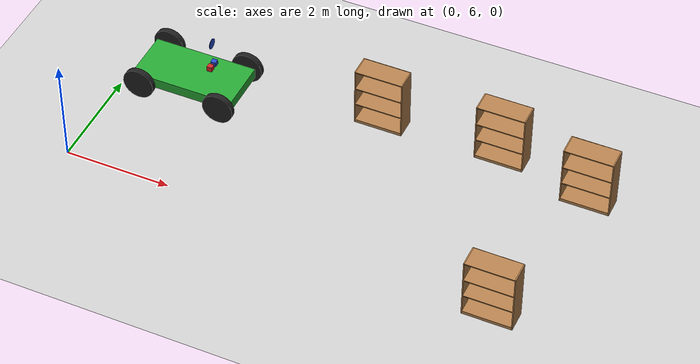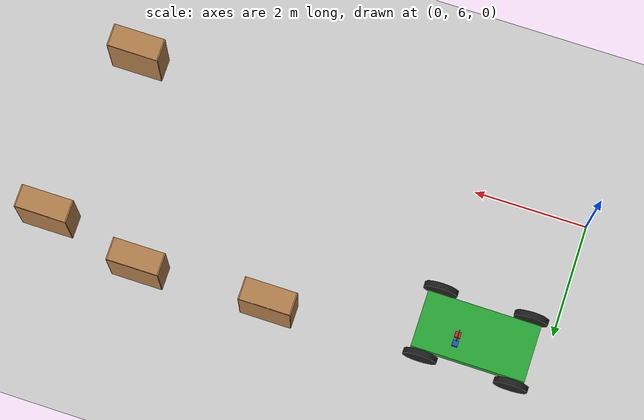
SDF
<sdf version="1.7">
 <world name="default">
  <model name="ground_plane">
   <static>1</static>
   <link name="link">
    <collision name="collision">
     <geometry><plane><normal>0 0 1</normal><size>100 100</size></plane></geometry>
     <surface><friction><ode><mu>100</mu><mu2>50</mu2></ode></friction></surface>
    </collision>
    <visual name="visual">
     <cast_shadows>0</cast_shadows>
     <geometry><plane><normal>0 0 1</normal><size>100 100</size></plane></geometry>
     <material>
      <script><uri>file://media/materials/scripts/gazebo.material</uri><name>Gazebo/Grey</name></script>
     </material>
    </visual>
   </link>
  </model>
  <model name="bookshelf">
   <static>1</static>
   <link name="link">
    <inertial><mass>1</mass></inertial>
    <collision name="back">
     <pose>0 0.005 0.6 0 -0 0</pose>
     <geometry><box><size>0.9 0.01 1.2</size></box></geometry>
    </collision>
    <visual name="visual1">
     <pose>0 0.005 0.6 0 -0 0</pose>
     <geometry><box><size>0.9 0.01 1.2</size></box></geometry>
     <material>
      <script><uri>file://media/materials/scripts/gazebo.material</uri><name>Gazebo/Wood</name></script>
     </material>
    </visual>
    <collision name="left_side">
     <pose>0.45 -0.195 0.6 0 -0 0</pose>
     <geometry><box><size>0.02 0.4 1.2</size></box></geometry>
    </collision>
    <visual name="visual2">
     <pose>0.45 -0.195 0.6 0 -0 0</pose>
     <geometry><box><size>0.02 0.4 1.2</size></box></geometry>
     <material>
      <script><uri>file://media/materials/scripts/gazebo.material</uri><name>Gazebo/Wood</name></script>
     </material>
    </visual>
    <collision name="right_side">
     <pose>-0.45 -0.195 0.6 0 -0 0</pose>
     <geometry><box><size>0.02 0.4 1.2</size></box></geometry>
    </collision>
    <visual name="visual3">
     <pose>-0.45 -0.195 0.6 0 -0 0</pose>
     <geometry><box><size>0.02 0.4 1.2</size></box></geometry>
     <material>
      <script><uri>file://media/materials/scripts/gazebo.material</uri><name>Gazebo/Wood</name></script>
     </material>
    </visual>
    <collision name="bottom">
     <pose>0 -0.195 0.03 0 -0 0</pose>
     <geometry><box><size>0.88 0.4 0.06</size></box></geometry>
    </collision>
    <visual name="visual4">
     <pose>0 -0.195 0.03 0 -0 0</pose>
     <geometry><box><size>0.88 0.4 0.06</size></box></geometry>
     <material>
      <script><uri>file://media/materials/scripts/gazebo.material</uri><name>Gazebo/Wood</name></script>
     </material>
    </visual>
    <collision name="top">
     <pose>0 -0.195 1.19 0 -0 0</pose>
     <geometry><box><size>0.88 0.4 0.02</size></box></geometry>
    </collision>
    <visual name="visual5">
     <pose>0 -0.195 1.19 0 -0 0</pose>
     <geometry><box><size>0.88 0.4 0.02</size></box></geometry>
     <material>
      <script><uri>file://media/materials/scripts/gazebo.material</uri><name>Gazebo/Wood</name></script>
     </material>
    </visual>
    <collision name="low_shelf">
     <pose>0 -0.195 0.43 0 -0 0</pose>
     <geometry><box><size>0.88 0.4 0.02</size></box></geometry>
    </collision>
    <visual name="visual6">
     <pose>0 -0.195 0.43 0 -0 0</pose>
     <geometry><box><size>0.88 0.4 0.02</size></box></geometry>
     <material>
      <script><uri>file://media/materials/scripts/gazebo.material</uri><name>Gazebo/Wood</name></script>
     </material>
    </visual>
    <collision name="high_shelf">
     <pose>0 -0.195 0.8 0 -0 0</pose>
     <geometry><box><size>0.88 0.4 0.02</size></box></geometry>
    </collision>
    <visual name="visual7">
     <pose>0 -0.195 0.8 0 -0 0</pose>
     <geometry><box><size>0.88 0.4 0.02</size></box></geometry>
     <material>
      <script><uri>file://media/materials/scripts/gazebo.material</uri><name>Gazebo/Wood</name></script>
     </material>
    </visual>
   </link>
   <pose>4.7492 9.25194 0 0 -0 0</pose>
  </model>
  <model name="bookshelf_clone">
   <static>1</static>
   <link name="link">
    <inertial><mass>1</mass></inertial>
    <collision name="back">
     <pose>0 0.005 0.6 0 -0 0</pose>
     <geometry><box><size>0.9 0.01 1.2</size></box></geometry>
    </collision>
    <visual name="visual1">
     <pose>0 0.005 0.6 0 -0 0</pose>
     <geometry><box><size>0.9 0.01 1.2</size></box></geometry>
     <material>
      <script><uri>file://media/materials/scripts/gazebo.material</uri><name>Gazebo/Wood</name></script>
     </material>
    </visual>
    <collision name="left_side">
     <pose>0.45 -0.195 0.6 0 -0 0</pose>
     <geometry><box><size>0.02 0.4 1.2</size></box></geometry>
    </collision>
    <visual name="visual2">
     <pose>0.45 -0.195 0.6 0 -0 0</pose>
     <geometry><box><size>0.02 0.4 1.2</size></box></geometry>
     <material>
      <script><uri>file://media/materials/scripts/gazebo.material</uri><name>Gazebo/Wood</name></script>
     </material>
    </visual>
    <collision name="right_side">
     <pose>-0.45 -0.195 0.6 0 -0 0</pose>
     <geometry><box><size>0.02 0.4 1.2</size></box></geometry>
    </collision>
    <visual name="visual3">
     <pose>-0.45 -0.195 0.6 0 -0 0</pose>
     <geometry><box><size>0.02 0.4 1.2</size></box></geometry>
     <material>
      <script><uri>file://media/materials/scripts/gazebo.material</uri><name>Gazebo/Wood</name></script>
     </material>
    </visual>
    <collision name="bottom">
     <pose>0 -0.195 0.03 0 -0 0</pose>
     <geometry><box><size>0.88 0.4 0.06</size></box></geometry>
    </collision>
    <visual name="visual4">
     <pose>0 -0.195 0.03 0 -0 0</pose>
     <geometry><box><size>0.88 0.4 0.06</size></box></geometry>
     <material>
      <script><uri>file://media/materials/scripts/gazebo.material</uri><name>Gazebo/Wood</name></script>
     </material>
    </visual>
    <collision name="top">
     <pose>0 -0.195 1.19 0 -0 0</pose>
     <geometry><box><size>0.88 0.4 0.02</size></box></geometry>
    </collision>
    <visual name="visual5">
     <pose>0 -0.195 1.19 0 -0 0</pose>
     <geometry><box><size>0.88 0.4 0.02</size></box></geometry>
     <material>
      <script><uri>file://media/materials/scripts/gazebo.material</uri><name>Gazebo/Wood</name></script>
     </material>
    </visual>
    <collision name="low_shelf">
     <pose>0 -0.195 0.43 0 -0 0</pose>
     <geometry><box><size>0.88 0.4 0.02</size></box></geometry>
    </collision>
    <visual name="visual6">
     <pose>0 -0.195 0.43 0 -0 0</pose>
     <geometry><box><size>0.88 0.4 0.02</size></box></geometry>
     <material>
      <script><uri>file://media/materials/scripts/gazebo.material</uri><name>Gazebo/Wood</name></script>
     </material>
    </visual>
    <collision name="high_shelf">
     <pose>0 -0.195 0.8 0 -0 0</pose>
     <geometry><box><size>0.88 0.4 0.02</size></box></geometry>
    </collision>
    <visual name="visual7">
     <pose>0 -0.195 0.8 0 -0 0</pose>
     <geometry><box><size>0.88 0.4 0.02</size></box></geometry>
     <material>
      <script><uri>file://media/materials/scripts/gazebo.material</uri><name>Gazebo/Wood</name></script>
     </material>
    </visual>
   </link>
   <pose>7.05038 9.29915 0 0 -0 0</pose>
  </model>
  <model name="bookshelf_clone_0">
   <static>1</static>
   <link name="link">
    <inertial><mass>1</mass></inertial>
    <collision name="back">
     <pose>0 0.005 0.6 0 -0 0</pose>
     <geometry><box><size>0.9 0.01 1.2</size></box></geometry>
    </collision>
    <visual name="visual1">
     <pose>0 0.005 0.6 0 -0 0</pose>
     <geometry><box><size>0.9 0.01 1.2</size></box></geometry>
     <material>
      <script><uri>file://media/materials/scripts/gazebo.material</uri><name>Gazebo/Wood</name></script>
     </material>
    </visual>
    <collision name="left_side">
     <pose>0.45 -0.195 0.6 0 -0 0</pose>
     <geometry><box><size>0.02 0.4 1.2</size></box></geometry>
    </collision>
    <visual name="visual2">
     <pose>0.45 -0.195 0.6 0 -0 0</pose>
     <geometry><box><size>0.02 0.4 1.2</size></box></geometry>
     <material>
      <script><uri>file://media/materials/scripts/gazebo.material</uri><name>Gazebo/Wood</name></script>
     </material>
    </visual>
    <collision name="right_side">
     <pose>-0.45 -0.195 0.6 0 -0 0</pose>
     <geometry><box><size>0.02 0.4 1.2</size></box></geometry>
    </collision>
    <visual name="visual3">
     <pose>-0.45 -0.195 0.6 0 -0 0</pose>
     <geometry><box><size>0.02 0.4 1.2</size></box></geometry>
     <material>
      <script><uri>file://media/materials/scripts/gazebo.material</uri><name>Gazebo/Wood</name></script>
     </material>
    </visual>
    <collision name="bottom">
     <pose>0 -0.195 0.03 0 -0 0</pose>
     <geometry><box><size>0.88 0.4 0.06</size></box></geometry>
    </collision>
    <visual name="visual4">
     <pose>0 -0.195 0.03 0 -0 0</pose>
     <geometry><box><size>0.88 0.4 0.06</size></box></geometry>
     <material>
      <script><uri>file://media/materials/scripts/gazebo.material</uri><name>Gazebo/Wood</name></script>
     </material>
    </visual>
    <collision name="top">
     <pose>0 -0.195 1.19 0 -0 0</pose>
     <geometry><box><size>0.88 0.4 0.02</size></box></geometry>
    </collision>
    <visual name="visual5">
     <pose>0 -0.195 1.19 0 -0 0</pose>
     <geometry><box><size>0.88 0.4 0.02</size></box></geometry>
     <material>
      <script><uri>file://media/materials/scripts/gazebo.material</uri><name>Gazebo/Wood</name></script>
     </material>
    </visual>
    <collision name="low_shelf">
     <pose>0 -0.195 0.43 0 -0 0</pose>
     <geometry><box><size>0.88 0.4 0.02</size></box></geometry>
    </collision>
    <visual name="visual6">
     <pose>0 -0.195 0.43 0 -0 0</pose>
     <geometry><box><size>0.88 0.4 0.02</size></box></geometry>
     <material>
      <script><uri>file://media/materials/scripts/gazebo.material</uri><name>Gazebo/Wood</name></script>
     </material>
    </visual>
    <collision name="high_shelf">
     <pose>0 -0.195 0.8 0 -0 0</pose>
     <geometry><box><size>0.88 0.4 0.02</size></box></geometry>
    </collision>
    <visual name="visual7">
     <pose>0 -0.195 0.8 0 -0 0</pose>
     <geometry><box><size>0.88 0.4 0.02</size></box></geometry>
     <material>
      <script><uri>file://media/materials/scripts/gazebo.material</uri><name>Gazebo/Wood</name></script>
     </material>
    </visual>
   </link>
   <pose>8.80784 8.92033 0 0 -0 0</pose>
  </model>
  <model name="bookshelf_clone_6">
   <static>1</static>
   <link name="link">
    <inertial><mass>1</mass></inertial>
    <collision name="back">
     <pose>0 0.005 0.6 0 -0 0</pose>
     <geometry><box><size>0.9 0.01 1.2</size></box></geometry>
    </collision>
    <visual name="visual1">
     <pose>0 0.005 0.6 0 -0 0</pose>
     <geometry><box><size>0.9 0.01 1.2</size></box></geometry>
     <material>
      <script><uri>file://media/materials/scripts/gazebo.material</uri><name>Gazebo/Wood</name></script>
     </material>
    </visual>
    <collision name="left_side">
     <pose>0.45 -0.195 0.6 0 -0 0</pose>
     <geometry><box><size>0.02 0.4 1.2</size></box></geometry>
    </collision>
    <visual name="visual2">
     <pose>0.45 -0.195 0.6 0 -0 0</pose>
     <geometry><box><size>0.02 0.4 1.2</size></box></geometry>
     <material>
      <script><uri>file://media/materials/scripts/gazebo.material</uri><name>Gazebo/Wood</name></script>
     </material>
    </visual>
    <collision name="right_side">
     <pose>-0.45 -0.195 0.6 0 -0 0</pose>
     <geometry><box><size>0.02 0.4 1.2</size></box></geometry>
    </collision>
    <visual name="visual3">
     <pose>-0.45 -0.195 0.6 0 -0 0</pose>
     <geometry><box><size>0.02 0.4 1.2</size></box></geometry>
     <material>
      <script><uri>file://media/materials/scripts/gazebo.material</uri><name>Gazebo/Wood</name></script>
     </material>
    </visual>
    <collision name="bottom">
     <pose>0 -0.195 0.03 0 -0 0</pose>
     <geometry><box><size>0.88 0.4 0.06</size></box></geometry>
    </collision>
    <visual name="visual4">
     <pose>0 -0.195 0.03 0 -0 0</pose>
     <geometry><box><size>0.88 0.4 0.06</size></box></geometry>
     <material>
      <script><uri>file://media/materials/scripts/gazebo.material</uri><name>Gazebo/Wood</name></script>
     </material>
    </visual>
    <collision name="top">
     <pose>0 -0.195 1.19 0 -0 0</pose>
     <geometry><box><size>0.88 0.4 0.02</size></box></geometry>
    </collision>
    <visual name="visual5">
     <pose>0 -0.195 1.19 0 -0 0</pose>
     <geometry><box><size>0.88 0.4 0.02</size></box></geometry>
     <material>
      <script><uri>file://media/materials/scripts/gazebo.material</uri><name>Gazebo/Wood</name></script>
     </material>
    </visual>
    <collision name="low_shelf">
     <pose>0 -0.195 0.43 0 -0 0</pose>
     <geometry><box><size>0.88 0.4 0.02</size></box></geometry>
    </collision>
    <visual name="visual6">
     <pose>0 -0.195 0.43 0 -0 0</pose>
     <geometry><box><size>0.88 0.4 0.02</size></box></geometry>
     <material>
      <script><uri>file://media/materials/scripts/gazebo.material</uri><name>Gazebo/Wood</name></script>
     </material>
    </visual>
    <collision name="high_shelf">
     <pose>0 -0.195 0.8 0 -0 0</pose>
     <geometry><box><size>0.88 0.4 0.02</size></box></geometry>
    </collision>
    <visual name="visual7">
     <pose>0 -0.195 0.8 0 -0 0</pose>
     <geometry><box><size>0.88 0.4 0.02</size></box></geometry>
     <material>
      <script><uri>file://media/materials/scripts/gazebo.material</uri><name>Gazebo/Wood</name></script>
     </material>
    </visual>
   </link>
   <pose>8.26475 5.77926 0 0 -0 0</pose>
  </model>
  <model name="car">
   <link name="chassis">
    <pose>0 0 0.3 0 -0 0</pose>
    <collision name="collision"><geometry><box><size>2 1 0.2</size></box></geometry></collision>
    <visual name="visual">
     <geometry><box><size>2 1 0.2</size></box></geometry>
     <material>
      <script><uri>file://media/materials/scripts/gazebo.material</uri><name>Gazebo/Green</name></script>
     </material>
    </visual>
    <inertial>
     <inertia><ixx>1</ixx><ixy>0</ixy><ixz>0</ixz><iyy>1</iyy><iyz>0</iyz><izz>1</izz></inertia>
     <mass>1</mass>
    </inertial>
   </link>
   <link name="front_left_wheel">
    <pose>0.8 0.6 0.3 -0 1.5707 1.5707</pose>
    <collision name="collision">
     <geometry><cylinder><radius>0.3</radius><length>0.1</length></cylinder></geometry>
    </collision>
    <visual name="visual">
     <geometry><cylinder><radius>0.3</radius><length>0.1</length></cylinder></geometry>
     <material>
      <script><uri>file://media/materials/scripts/gazebo.material</uri><name>Gazebo/Black</name></script>
     </material>
    </visual>
    <inertial>
     <inertia><ixx>1</ixx><ixy>0</ixy><ixz>0</ixz><iyy>1</iyy><iyz>0</iyz><izz>1</izz></inertia>
     <mass>1</mass>
    </inertial>
   </link>
   <link name="front_right_wheel">
    <pose>0.8 -0.6 0.3 -0 1.5707 1.5707</pose>
    <collision name="collision">
     <geometry><cylinder><radius>0.3</radius><length>0.1</length></cylinder></geometry>
    </collision>
    <visual name="visual">
     <geometry><cylinder><radius>0.3</radius><length>0.1</length></cylinder></geometry>
     <material>
      <script><uri>file://media/materials/scripts/gazebo.material</uri><name>Gazebo/Black</name></script>
     </material>
    </visual>
    <inertial>
     <inertia><ixx>1</ixx><ixy>0</ixy><ixz>0</ixz><iyy>1</iyy><iyz>0</iyz><izz>1</izz></inertia>
     <mass>1</mass>
    </inertial>
   </link>
   <link name="back_right_wheel">
    <pose>-0.8 -0.6 0.3 -0 1.5707 1.5707</pose>
    <collision name="collision">
     <geometry><cylinder><radius>0.3</radius><length>0.1</length></cylinder></geometry>
    </collision>
    <visual name="visual">
     <geometry><cylinder><radius>0.3</radius><length>0.1</length></cylinder></geometry>
     <material>
      <script><uri>file://media/materials/scripts/gazebo.material</uri><name>Gazebo/Black</name></script>
     </material>
    </visual>
    <inertial>
     <inertia><ixx>1</ixx><ixy>0</ixy><ixz>0</ixz><iyy>1</iyy><iyz>0</iyz><izz>1</izz></inertia>
     <mass>1</mass>
    </inertial>
   </link>
   <link name="back_left_wheel">
    <pose>-0.8 0.6 0.3 -0 1.5707 1.5707</pose>
    <collision name="collision">
     <geometry><cylinder><radius>0.3</radius><length>0.1</length></cylinder></geometry>
    </collision>
    <visual name="visual">
     <geometry><cylinder><radius>0.3</radius><length>0.1</length></cylinder></geometry>
     <material>
      <script><uri>file://media/materials/scripts/gazebo.material</uri><name>Gazebo/Black</name></script>
     </material>
    </visual>
    <inertial>
     <inertia><ixx>1</ixx><ixy>0</ixy><ixz>0</ixz><iyy>1</iyy><iyz>0</iyz><izz>1</izz></inertia>
     <mass>1</mass>
    </inertial>
   </link>
   <link name="gas_pedal">
    <pose>0.3 0.1 0.5 0 -0 0</pose>
    <collision name="collision"><geometry><box><size>0.1 0.1 0.1</size></box></geometry></collision>
    <visual name="visual">
     <geometry><box><size>0.1 0.1 0.1</size></box></geometry>
     <material>
      <script><uri>file://media/materials/scripts/gazebo.material</uri><name>Gazebo/Red</name></script>
     </material>
    </visual>
    <inertial>
     <inertia><ixx>1</ixx><ixy>0</ixy><ixz>0</ixz><iyy>1</iyy><iyz>0</iyz><izz>1</izz></inertia>
     <mass>1</mass>
    </inertial>
   </link>
   <link name="brake_pedal">
    <pose>0.3 0.25 0.5 0 -0 0</pose>
    <collision name="collision"><geometry><box><size>0.1 0.1 0.1</size></box></geometry></collision>
    <visual name="visual">
     <geometry><box><size>0.1 0.1 0.1</size></box></geometry>
     <material>
      <script><uri>file://media/materials/scripts/gazebo.material</uri><name>Gazebo/Blue</name></script>
     </material>
    </visual>
    <inertial>
     <inertia><ixx>1</ixx><ixy>0</ixy><ixz>0</ixz><iyy>1</iyy><iyz>0</iyz><izz>1</izz></inertia>
     <mass>1</mass>
    </inertial>
   </link>
   <link name="steering_wheel">
    <pose>0.3 0.2 1 0 1.5707 0</pose>
    <collision name="collision">
     <geometry><cylinder><radius>0.1</radius><length>0.01</length></cylinder></geometry>
    </collision>
    <visual name="visual">
     <geometry><cylinder><radius>0.1</radius><length>0.01</length></cylinder></geometry>
     <material>
      <script><uri>file://media/materials/scripts/gazebo.material</uri><name>Gazebo/Blue</name></script>
     </material>
    </visual>
    <inertial>
     <inertia><ixx>1</ixx><ixy>0</ixy><ixz>0</ixz><iyy>1</iyy><iyz>0</iyz><izz>1</izz></inertia>
     <mass>1</mass>
    </inertial>
   </link>
   <joint name="gas_joint" type="prismatic">
    <parent>chassis</parent>
    <child>gas_pedal</child>
    <axis>
     <xyz expressed_in="__model__">1 0 0</xyz>
     <limit><lower>0</lower><upper>0.2</upper></limit>
     <dynamics><spring_reference>0</spring_reference><spring_stiffness>0</spring_stiffness></dynamics>
    </axis>
   </joint>
   <joint name="brake_joint" type="prismatic">
    <parent>chassis</parent>
    <child>brake_pedal</child>
    <axis>
     <xyz expressed_in="__model__">1 0 0</xyz>
     <limit><lower>0</lower><upper>0.2</upper></limit>
     <dynamics><spring_reference>0</spring_reference><spring_stiffness>0</spring_stiffness></dynamics>
    </axis>
   </joint>
   <joint name="steering_joint" type="revolute">
    <parent>chassis</parent>
    <child>steering_wheel</child>
    <axis>
     <xyz expressed_in="__model__">1 0 0</xyz>
     <limit><lower>-7.853</lower><upper>7.853</upper></limit>
     <dynamics><spring_reference>0</spring_reference><spring_stiffness>0</spring_stiffness></dynamics>
    </axis>
   </joint>
   <joint name="front_left_joint" type="revolute2">
    <parent>chassis</parent>
    <child>front_left_wheel</child>
    <axis>
     <xyz expressed_in="__model__">0 0 1</xyz>
     <limit><lower>1.45311e-07</lower><upper>1.45311e-07</upper></limit>
     <dynamics><spring_reference>0</spring_reference><spring_stiffness>0</spring_stiffness></dynamics>
    </axis>
    <axis2>
     <xyz expressed_in="__model__">0 1 0</xyz>
     <limit><upper>1e+16</upper><lower>-1e+16</lower></limit>
     <dynamics><spring_reference>0</spring_reference><spring_stiffness>0</spring_stiffness></dynamics>
    </axis2>
    <physics><ode><limit><cfm>0</cfm><erp>0.9</erp></limit></ode></physics>
   </joint>
   <joint name="front_right_joint" type="revolute2">
    <parent>chassis</parent>
    <child>front_right_wheel</child>
    <axis>
     <xyz expressed_in="__model__">0 0 1</xyz>
     <limit><lower>1.45311e-07</lower><upper>1.45311e-07</upper></limit>
     <dynamics><spring_reference>0</spring_reference><spring_stiffness>0</spring_stiffness></dynamics>
    </axis>
    <axis2>
     <xyz expressed_in="__model__">0 1 0</xyz>
     <limit><upper>1e+16</upper><lower>-1e+16</lower></limit>
     <dynamics><spring_reference>0</spring_reference><spring_stiffness>0</spring_stiffness></dynamics>
    </axis2>
    <physics><ode><limit><cfm>0</cfm><erp>0.9</erp></limit></ode></physics>
   </joint>
   <joint name="back_right_joint" type="revolute2">
    <parent>chassis</parent>
    <child>back_right_wheel</child>
    <axis>
     <xyz expressed_in="__model__">0 0 1</xyz>
     <limit><lower>0</lower><upper>0</upper></limit>
     <dynamics><spring_reference>0</spring_reference><spring_stiffness>0</spring_stiffness></dynamics>
    </axis>
    <axis2>
     <xyz expressed_in="__model__">0 1 0</xyz>
     <limit><upper>1e+16</upper><lower>-1e+16</lower></limit>
     <dynamics><spring_reference>0</spring_reference><spring_stiffness>0</spring_stiffness></dynamics>
    </axis2>
    <physics><ode><limit><cfm>0</cfm><erp>0.9</erp></limit></ode></physics>
   </joint>
   <joint name="back_left_joint" type="revolute2">
    <parent>chassis</parent>
    <child>back_left_wheel</child>
    <axis>
     <xyz expressed_in="__model__">0 0 1</xyz>
     <limit><lower>0</lower><upper>0</upper></limit>
     <dynamics><spring_reference>0</spring_reference><spring_stiffness>0</spring_stiffness></dynamics>
    </axis>
    <axis2>
     <xyz expressed_in="__model__">0 1 0</xyz>
     <limit><upper>1e+16</upper><lower>-1e+16</lower></limit>
     <dynamics><spring_reference>0</spring_reference><spring_stiffness>0</spring_stiffness></dynamics>
    </axis2>
    <physics><ode><limit><cfm>0</cfm><erp>0.9</erp></limit></ode></physics>
   </joint>
   <plugin name="vehicle" filename="libVehiclePlugin.so">
    <front_left>front_left_joint</front_left>
    <front_right>front_right_joint</front_right>
    <back_left>back_left_joint</back_left>
    <back_right>back_right_joint</back_right>
    <gas>gas_joint</gas>
    <brake>brake_joint</brake>
    <steering>steering_joint</steering>
    <front_power>10</front_power>
    <rear_power>10</rear_power>
    <tire_angle_range>0.5</tire_angle_range>
    <max_speed>10</max_speed>
    <aero_load>0.1</aero_load>
   </plugin>
   <pose>1.25328 8.4752 9e-06 -5e-06 2e-06 -0.000295</pose>
  </model>
 </world>
</sdf>
